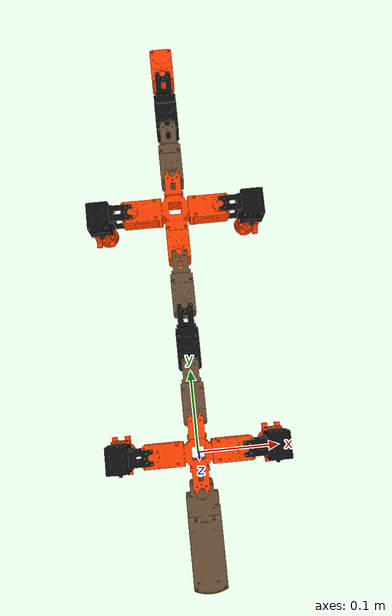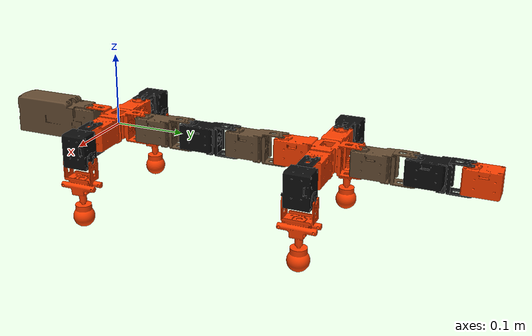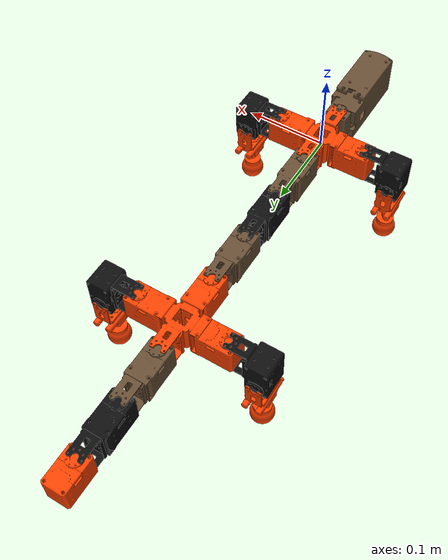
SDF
<?xml version="1.0" ?>
<sdf version="1.6">
  <world name="world">
    <model name="V2SalamanderRobot">
      <pose>0.0 0.0 0.0 0.0 0.0 0.0</pose>
      <link name="base_link">
        <pose>0.0 0.0 0.0 0.0 0.0 0.0</pose>
        <inertial>
          <pose>7.42237988189514e-13 -1.9292496043488565e-06 -0.0003800327833397048 0.0 0.0 0.0</pose>
          <mass>0.2889489844693423</mass>
          <inertia>
            <ixx>6.203340226218487e-05</ixx>
            <ixy>-1.2378155399518376e-12</ixy>
            <ixz>-3.9372639104666543e-17</ixz>
            <iyy>0.0006301575302018931</iyy>
            <iyz>2.1184586882804209e-10</iyz>
            <izz>0.0006268797658595486</izz>
          </inertia>
        </inertial>
        <collision name="base_link_collision">
          <pose>0.0 0.0 0.0 0.0 0.0 0.0</pose>
          <geometry>
            <mesh>
              <uri>meshes/base_link.stl</uri>
              <scale>0.001 0.001 0.001</scale>
            </mesh>
          </geometry>
        </collision>
        <visual name="base_link_visual">
          <pose>0.0 0.0 0.0 0.0 0.0 0.0</pose>
          <geometry>
            <mesh>
              <uri>meshes/base_link.stl</uri>
              <scale>0.001 0.001 0.001</scale>
            </mesh>
          </geometry>
          <material>
            <ambient>1.0 0.25 0 1</ambient>
            <diffuse>1.0 0.25 0 1</diffuse>
            <specular>1.0 0.25 0 1</specular>
            <emissive>1.0 0.25 0 1</emissive>
          </material>
        </visual>
      </link>
      <link name="head">
        <pose>0.0 -0.045 0.019 0.0 0.0 0.0</pose>
        <inertial>
          <pose>6.030339272706755e-11 -0.011641239820081369 -0.018575282175538076 0.0 0.0 0.0</pose>
          <mass>0.11771798534526684</mass>
          <inertia>
            <ixx>3.273506574607482e-05</ixx>
            <ixy>-9.44125662229807e-14</ixy>
            <ixz>-6.467897178162268e-13</ixz>
            <iyy>1.9286060309157253e-05</iyy>
            <iyz>-1.0525841574405383e-07</iyz>
            <izz>2.851244504239591e-05</izz>
          </inertia>
        </inertial>
        <collision name="head_collision">
          <pose>0.0 0.0 -0.019 0.0 0.0 0.0</pose>
          <geometry>
            <mesh>
              <uri>meshes/Head.stl</uri>
              <scale>0.001 0.001 0.001</scale>
            </mesh>
          </geometry>
        </collision>
        <visual name="head_visual">
          <pose>0.0 0.0 -0.019 0.0 0.0 0.0</pose>
          <geometry>
            <mesh>
              <uri>meshes/Head.stl</uri>
              <scale>0.001 0.001 0.001</scale>
            </mesh>
          </geometry>
          <material>
            <ambient>0.4 0.3 0.2 1</ambient>
            <diffuse>0.4 0.3 0.2 1</diffuse>
            <specular>0.4 0.3 0.2 1</specular>
            <emissive>0.4 0.3 0.2 1</emissive>
          </material>
        </visual>
      </link>
      <link name="link_spine_v21XM430_W350_R_v1_v21X-430_IDLE1">
        <pose>0.0 0.0449 0.019 0.0 0.0 0.0</pose>
        <inertial>
          <pose>6.329810736086822e-06 0.014970743667780007 -0.019372958157997024 0.0 0.0 0.0</pose>
          <mass>0.13127865763979402</mass>
          <inertia>
            <ixx>4.941827675605272e-05</ixx>
            <ixy>-1.420641475980395e-08</ixy>
            <ixz>1.2567682908937612e-08</ixz>
            <iyy>2.315951195546107e-05</iyy>
            <iyz>-2.8733396688711805e-07</iyz>
            <izz>4.292286280268648e-05</izz>
          </inertia>
        </inertial>
        <collision name="link_spine_v21XM430_W350_R_v1_v21X-430_IDLE1_collision">
          <pose>0.0 -0.0449 -0.019 0.0 0.0 0.0</pose>
          <geometry>
            <mesh>
              <uri>meshes/link_spine_v21XM430_W350_R_v1_v21X-430_IDLE1.stl</uri>
              <scale>0.001 0.001 0.001</scale>
            </mesh>
          </geometry>
        </collision>
        <visual name="link_spine_v21XM430_W350_R_v1_v21X-430_IDLE1_visual">
          <pose>0.0 -0.0449 -0.019 0.0 0.0 0.0</pose>
          <geometry>
            <mesh>
              <uri>meshes/link_spine_v21XM430_W350_R_v1_v21X-430_IDLE1.stl</uri>
              <scale>0.001 0.001 0.001</scale>
            </mesh>
          </geometry>
          <material>
            <ambient>0.4 0.3 0.2 1</ambient>
            <diffuse>0.4 0.3 0.2 1</diffuse>
            <specular>0.4 0.3 0.2 1</specular>
            <emissive>0.4 0.3 0.2 1</emissive>
          </material>
        </visual>
      </link>
      <link name="link_spine_v22XM430_W350_R_v1_v21X-430_IDLE1">
        <pose>0.0 0.1134 0.019 0.0 0.0 0.0</pose>
        <inertial>
          <pose>6.329808715232242e-06 0.014970741494816808 -0.019372958190713257 0.0 0.0 0.0</pose>
          <mass>0.131278657639794</mass>
          <inertia>
            <ixx>4.9418279730786617e-05</ixx>
            <ixy>-1.4206412782641869e-08</ixy>
            <ixz>1.256768261259443e-08</ixz>
            <iyy>2.315951161711794e-05</iyy>
            <iyz>-2.8733422554076287e-07</iyz>
            <izz>4.292286592102821e-05</izz>
          </inertia>
        </inertial>
        <collision name="link_spine_v22XM430_W350_R_v1_v21X-430_IDLE1_collision">
          <pose>-0.0 -0.1134 -0.019 0.0 0.0 0.0</pose>
          <geometry>
            <mesh>
              <uri>meshes/link_spine_v22XM430_W350_R_v1_v21X-430_IDLE1.stl</uri>
              <scale>0.001 0.001 0.001</scale>
            </mesh>
          </geometry>
        </collision>
        <visual name="link_spine_v22XM430_W350_R_v1_v21X-430_IDLE1_visual">
          <pose>-0.0 -0.1134 -0.019 0.0 0.0 0.0</pose>
          <geometry>
            <mesh>
              <uri>meshes/link_spine_v22XM430_W350_R_v1_v21X-430_IDLE1.stl</uri>
              <scale>0.001 0.001 0.001</scale>
            </mesh>
          </geometry>
          <material>
            <ambient>0.05 0.05 0.05 1</ambient>
            <diffuse>0.05 0.05 0.05 1</diffuse>
            <specular>0.05 0.05 0.05 1</specular>
            <emissive>0.05 0.05 0.05 1</emissive>
          </material>
        </visual>
      </link>
      <link name="link_spine_v23XM430_W350_R_v1_v21X-430_IDLE1">
        <pose>0.0 0.1819 0.019 0.0 0.0 0.0</pose>
        <inertial>
          <pose>6.329808655829628e-06 0.014970741638069801 -0.019372958204767757 0.0 0.0 0.0</pose>
          <mass>0.131278657639794</mass>
          <inertia>
            <ixx>4.941827937534177e-05</ixx>
            <ixy>-1.4206412864262256e-08</ixy>
            <ixz>1.256768651684258e-08</ixz>
            <iyy>2.3159511453580432e-05</iyy>
            <iyz>-2.8733425577601013e-07</iyz>
            <izz>4.2922865840581415e-05</izz>
          </inertia>
        </inertial>
        <collision name="link_spine_v23XM430_W350_R_v1_v21X-430_IDLE1_collision">
          <pose>-0.0 -0.1819 -0.019 0.0 0.0 0.0</pose>
          <geometry>
            <mesh>
              <uri>meshes/link_spine_v23XM430_W350_R_v1_v21X-430_IDLE1.stl</uri>
              <scale>0.001 0.001 0.001</scale>
            </mesh>
          </geometry>
        </collision>
        <visual name="link_spine_v23XM430_W350_R_v1_v21X-430_IDLE1_visual">
          <pose>-0.0 -0.1819 -0.019 0.0 0.0 0.0</pose>
          <geometry>
            <mesh>
              <uri>meshes/link_spine_v23XM430_W350_R_v1_v21X-430_IDLE1.stl</uri>
              <scale>0.001 0.001 0.001</scale>
            </mesh>
          </geometry>
          <material>
            <ambient>0.4 0.3 0.2 1</ambient>
            <diffuse>0.4 0.3 0.2 1</diffuse>
            <specular>0.4 0.3 0.2 1</specular>
            <emissive>0.4 0.3 0.2 1</emissive>
          </material>
        </visual>
      </link>
      <link name="link_girdle_salamander_2_v31link_girdle_v71girdle_v31girdle1">
        <pose>0.0 0.2504 -0.019 0.0 0.0 0.0</pose>
        <inertial>
          <pose>2.1961327884012073e-06 0.043468986079035155 0.0186071388396934 0.0 0.0 0.0</pose>
          <mass>0.40432586676064347</mass>
          <inertia>
            <ixx>0.0002758727594262536</ixx>
            <ixy>1.0123815457037044e-08</ixy>
            <ixz>1.3418380449153109e-08</ixz>
            <iyy>0.0006320316115391221</iyy>
            <iyz>-2.961554680523555e-07</iyz>
            <izz>0.0008213387360462268</izz>
          </inertia>
        </inertial>
        <collision name="link_girdle_salamander_2_v31link_girdle_v71girdle_v31girdle1_collision">
          <pose>-0.0 -0.2504 0.019 0.0 0.0 0.0</pose>
          <geometry>
            <mesh>
              <uri>meshes/link_girdle_salamander_2_v31link_girdle_v71girdle_v31girdle1.stl</uri>
              <scale>0.001 0.001 0.001</scale>
            </mesh>
          </geometry>
        </collision>
        <visual name="link_girdle_salamander_2_v31link_girdle_v71girdle_v31girdle1_visual">
          <pose>-0.0 -0.2504 0.019 0.0 0.0 0.0</pose>
          <geometry>
            <mesh>
              <uri>meshes/link_girdle_salamander_2_v31link_girdle_v71girdle_v31girdle1.stl</uri>
              <scale>0.001 0.001 0.001</scale>
            </mesh>
          </geometry>
          <material>
            <ambient>1.0 0.25 0 1</ambient>
            <diffuse>1.0 0.25 0 1</diffuse>
            <specular>1.0 0.25 0 1</specular>
            <emissive>1.0 0.25 0 1</emissive>
          </material>
        </visual>
      </link>
      <link name="link_tail_v21XM430_W210_R_v1_v31X-430_IDLE1">
        <pose>0.0 0.3529 0.019 0.0 0.0 0.0</pose>
        <inertial>
          <pose>1.4051831691695117e-09 0.015016270061978254 -0.01938166855263028 0.0 0.0 0.0</pose>
          <mass>0.13131071893348267</mass>
          <inertia>
            <ixx>4.944150289937662e-05</ixx>
            <ixy>-2.8252140868085127e-12</ixy>
            <ixz>-1.9830361017324945e-11</ixz>
            <iyy>2.317851323004965e-05</iyy>
            <iyz>-2.6769880678544233e-07</iyz>
            <izz>4.2940168103863436e-05</izz>
          </inertia>
        </inertial>
        <collision name="link_tail_v21XM430_W210_R_v1_v31X-430_IDLE1_collision">
          <pose>-0.0 -0.3528 -0.019 0.0 0.0 0.0</pose>
          <geometry>
            <mesh>
              <uri>meshes/link_tail_v21XM430_W210_R_v1_v31X-430_IDLE1.stl</uri>
              <scale>0.001 0.001 0.001</scale>
            </mesh>
          </geometry>
        </collision>
        <visual name="link_tail_v21XM430_W210_R_v1_v31X-430_IDLE1_visual">
          <pose>-0.0 -0.3528 -0.019 0.0 0.0 0.0</pose>
          <geometry>
            <mesh>
              <uri>meshes/link_tail_v21XM430_W210_R_v1_v31X-430_IDLE1.stl</uri>
              <scale>0.001 0.001 0.001</scale>
            </mesh>
          </geometry>
          <material>
            <ambient>0.4 0.3 0.2 1</ambient>
            <diffuse>0.4 0.3 0.2 1</diffuse>
            <specular>0.4 0.3 0.2 1</specular>
            <emissive>0.4 0.3 0.2 1</emissive>
          </material>
        </visual>
      </link>
      <link name="link_tail_v22XM430_W210_R_v1_v31X-430_IDLE1">
        <pose>0.0 0.4214 0.019 0.0 0.0 0.0</pose>
        <inertial>
          <pose>1.405183168921037e-09 0.014946270061978462 -0.019381668552630283 0.0 0.0 0.0</pose>
          <mass>0.13131071893348265</mass>
          <inertia>
            <ixx>4.9441502899338326e-05</ixx>
            <ixy>-2.8252141114009688e-12</ixy>
            <ixz>-1.9830361017229335e-11</ixz>
            <iyy>2.317851323004964e-05</iyy>
            <iyz>-2.676988067857116e-07</iyz>
            <izz>4.294016810382499e-05</izz>
          </inertia>
        </inertial>
        <collision name="link_tail_v22XM430_W210_R_v1_v31X-430_IDLE1_collision">
          <pose>-0.0 -0.42137 -0.019 0.0 0.0 0.0</pose>
          <geometry>
            <mesh>
              <uri>meshes/link_tail_v22XM430_W210_R_v1_v31X-430_IDLE1.stl</uri>
              <scale>0.001 0.001 0.001</scale>
            </mesh>
          </geometry>
        </collision>
        <visual name="link_tail_v22XM430_W210_R_v1_v31X-430_IDLE1_visual">
          <pose>-0.0 -0.42137 -0.019 0.0 0.0 0.0</pose>
          <geometry>
            <mesh>
              <uri>meshes/link_tail_v22XM430_W210_R_v1_v31X-430_IDLE1.stl</uri>
              <scale>0.001 0.001 0.001</scale>
            </mesh>
          </geometry>
          <material>
            <ambient>0.05 0.05 0.05 1</ambient>
            <diffuse>0.05 0.05 0.05 1</diffuse>
            <specular>0.05 0.05 0.05 1</specular>
            <emissive>0.05 0.05 0.05 1</emissive>
          </material>
        </visual>
      </link>
      <link name="XM430_W210_R_v1_v31X-430_IDLE1">
        <pose>0.0 0.4899 0.019 0.0 0.0 0.0</pose>
        <inertial>
          <pose>1.0090401883316374e-10 0.011713010650924227 -0.019424324836757923 0.0 0.0 0.0</pose>
          <mass>0.11775004663895541</mass>
          <inertia>
            <ixx>3.2748774838012185e-05</ixx>
            <ixy>9.087157419056469e-14</ixy>
            <ixz>-1.9747781991859698e-11</ixz>
            <iyy>1.929262842209805e-05</iyy>
            <iyz>-1.0485067163090217e-07</iyz>
            <izz>2.852676102921425e-05</izz>
          </inertia>
        </inertial>
        <collision name="XM430_W210_R_v1_v31X-430_IDLE1_collision">
          <pose>-0.0 -0.4898 -0.019 0.0 0.0 0.0</pose>
          <geometry>
            <mesh>
              <uri>meshes/XM430_W210_R_v1_v31X-430_IDLE1.stl</uri>
              <scale>0.001 0.001 0.001</scale>
            </mesh>
          </geometry>
        </collision>
        <visual name="XM430_W210_R_v1_v31X-430_IDLE1_visual">
          <pose>-0.0 -0.4898 -0.019 0.0 0.0 0.0</pose>
          <geometry>
            <mesh>
              <uri>meshes/XM430_W210_R_v1_v31X-430_IDLE1.stl</uri>
              <scale>0.001 0.001 0.001</scale>
            </mesh>
          </geometry>
          <material>
            <ambient>1.0 0.25 0 1</ambient>
            <diffuse>1.0 0.25 0 1</diffuse>
            <specular>1.0 0.25 0 1</specular>
            <emissive>1.0 0.25 0 1</emissive>
          </material>
        </visual>
      </link>
      <link name="link_left_leg_v21XM430_W350_R_v1_v21X-430_IDLE1">
        <pose>0.0575 0.0 0.0 0.0 0.0 0.0</pose>
        <inertial>
          <pose>0.04083258144150035 -0.00038862876124461294 -0.004127287601795738 0.0 0.0 0.0</pose>
          <mass>0.12566887301933358</mass>
          <inertia>
            <ixx>3.531301373779605e-05</ixx>
            <ixy>5.4780983151499165e-08</ixy>
            <ixz>7.317876472158008e-07</ixz>
            <iyy>3.485211799021769e-05</iyy>
            <iyz>-1.416968074879363e-07</iyz>
            <izz>2.389311581486568e-05</izz>
          </inertia>
        </inertial>
        <collision name="link_left_leg_v21XM430_W350_R_v1_v21X-430_IDLE1_collision">
          <pose>-0.0575 0.0 0.0 0.0 0.0 0.0</pose>
          <geometry>
            <mesh>
              <uri>meshes/link_left_leg_v21XM430_W350_R_v1_v21X-430_IDLE1.stl</uri>
              <scale>0.001 0.001 0.001</scale>
            </mesh>
          </geometry>
        </collision>
        <visual name="link_left_leg_v21XM430_W350_R_v1_v21X-430_IDLE1_visual">
          <pose>-0.0575 0.0 0.0 0.0 0.0 0.0</pose>
          <geometry>
            <mesh>
              <uri>meshes/link_left_leg_v21XM430_W350_R_v1_v21X-430_IDLE1.stl</uri>
              <scale>0.001 0.001 0.001</scale>
            </mesh>
          </geometry>
          <material>
            <ambient>0.05 0.05 0.05 1</ambient>
            <diffuse>0.05 0.05 0.05 1</diffuse>
            <specular>0.05 0.05 0.05 1</specular>
            <emissive>0.05 0.05 0.05 1</emissive>
          </material>
        </visual>
      </link>
      <link name="link_left_leg_v22XM430_W350_R_v1_v21X-430_IDLE1">
        <pose>0.0575 0.3079 0.0 0.0 0.0 0.0</pose>
        <inertial>
          <pose>0.04083258130497049 -0.00038292873510287206 -0.004127287484305108 0.0 0.0 0.0</pose>
          <mass>0.12566887301933358</mass>
          <inertia>
            <ixx>3.531301409320499e-05</ixx>
            <ixy>5.47808488687334e-08</ixy>
            <ixz>7.317876343607348e-07</ixz>
            <iyy>3.485211951821188e-05</iyy>
            <iyz>-1.416971945491358e-07</iyz>
            <izz>2.3893117254563697e-05</izz>
          </inertia>
        </inertial>
        <collision name="link_left_leg_v22XM430_W350_R_v1_v21X-430_IDLE1_collision">
          <pose>-0.0575 -0.30793 -0.0 0.0 0.0 0.0</pose>
          <geometry>
            <mesh>
              <uri>meshes/link_left_leg_v22XM430_W350_R_v1_v21X-430_IDLE1.stl</uri>
              <scale>0.001 0.001 0.001</scale>
            </mesh>
          </geometry>
        </collision>
        <visual name="link_left_leg_v22XM430_W350_R_v1_v21X-430_IDLE1_visual">
          <pose>-0.0575 -0.30793 -0.0 0.0 0.0 0.0</pose>
          <geometry>
            <mesh>
              <uri>meshes/link_left_leg_v22XM430_W350_R_v1_v21X-430_IDLE1.stl</uri>
              <scale>0.001 0.001 0.001</scale>
            </mesh>
          </geometry>
          <material>
            <ambient>0.05 0.05 0.05 1</ambient>
            <diffuse>0.05 0.05 0.05 1</diffuse>
            <specular>0.05 0.05 0.05 1</specular>
            <emissive>0.05 0.05 0.05 1</emissive>
          </material>
        </visual>
      </link>
      <link name="link_right_leg_v21XM430_W350_R_v1_v21X-430_IDLE1">
        <pose>-0.0575 0.0 0.0 0.0 0.0 0.0</pose>
        <inertial>
          <pose>-0.04084579916830575 -0.0003886288424511308 -0.004127288246744913 0.0 0.0 0.0</pose>
          <mass>0.12566887301933355</mass>
          <inertia>
            <ixx>3.531301308798099e-05</ixx>
            <ixy>-7.988248779976503e-08</ixy>
            <ixz>-6.983554788836124e-07</ixz>
            <iyy>3.4856697406034465e-05</iyy>
            <iyz>-1.41696812833226e-07</iyz>
            <izz>2.3897695872544993e-05</izz>
          </inertia>
        </inertial>
        <collision name="link_right_leg_v21XM430_W350_R_v1_v21X-430_IDLE1_collision">
          <pose>0.0575 0.0 0.0 0.0 0.0 0.0</pose>
          <geometry>
            <mesh>
              <uri>meshes/link_right_leg_v21XM430_W350_R_v1_v21X-430_IDLE1.stl</uri>
              <scale>0.001 0.001 0.001</scale>
            </mesh>
          </geometry>
        </collision>
        <visual name="link_right_leg_v21XM430_W350_R_v1_v21X-430_IDLE1_visual">
          <pose>0.0575 0.0 0.0 0.0 0.0 0.0</pose>
          <geometry>
            <mesh>
              <uri>meshes/link_right_leg_v21XM430_W350_R_v1_v21X-430_IDLE1.stl</uri>
              <scale>0.001 0.001 0.001</scale>
            </mesh>
          </geometry>
          <material>
            <ambient>0.05 0.05 0.05 1</ambient>
            <diffuse>0.05 0.05 0.05 1</diffuse>
            <specular>0.05 0.05 0.05 1</specular>
            <emissive>0.05 0.05 0.05 1</emissive>
          </material>
        </visual>
      </link>
      <link name="link_right_leg_v22XM430_W350_R_v1_v21X-430_IDLE1">
        <pose>-0.0575 0.3079 0.0 0.0 0.0 0.0</pose>
        <inertial>
          <pose>-0.040845798977223007 -0.000382928816119954 -0.004127288123847577 0.0 0.0 0.0</pose>
          <mass>0.1256688730193336</mass>
          <inertia>
            <ixx>3.531301344878891e-05</ixx>
            <ixy>-7.988226130610476e-08</ixy>
            <ixz>-6.983556199730055e-07</ixz>
            <iyy>3.4856698921092415e-05</iyy>
            <iyz>-1.416972070853832e-07</iyz>
            <izz>2.389769729416161e-05</izz>
          </inertia>
        </inertial>
        <collision name="link_right_leg_v22XM430_W350_R_v1_v21X-430_IDLE1_collision">
          <pose>0.0575 -0.30793 0.0 0.0 0.0 0.0</pose>
          <geometry>
            <mesh>
              <uri>meshes/link_right_leg_v22XM430_W350_R_v1_v21X-430_IDLE1.stl</uri>
              <scale>0.001 0.001 0.001</scale>
            </mesh>
          </geometry>
        </collision>
        <visual name="link_right_leg_v22XM430_W350_R_v1_v21X-430_IDLE1_visual">
          <pose>0.0575 -0.30793 0.0 0.0 0.0 0.0</pose>
          <geometry>
            <mesh>
              <uri>meshes/link_right_leg_v22XM430_W350_R_v1_v21X-430_IDLE1.stl</uri>
              <scale>0.001 0.001 0.001</scale>
            </mesh>
          </geometry>
          <material>
            <ambient>0.05 0.05 0.05 1</ambient>
            <diffuse>0.05 0.05 0.05 1</diffuse>
            <specular>0.05 0.05 0.05 1</specular>
            <emissive>0.05 0.05 0.05 1</emissive>
          </material>
        </visual>
      </link>
      <link name="link_foot_v21fr12_h1011">
        <pose>0.0985 0.0 -0.01603 0.0 0.0 0.0</pose>
        <inertial>
          <pose>0.001000042025224985 -3.995913721516367e-08 -0.059033887903779524 0.0 0.0 0.0</pose>
          <mass>0.0474422550728817</mass>
          <inertia>
            <ixx>3.181301419353018e-05</ixx>
            <ixy>-2.2700767944325564e-12</ixy>
            <ixz>-1.5726357006359807e-12</ixz>
            <iyy>2.980723673584514e-05</iyy>
            <iyz>-9.61983665720713e-13</iyz>
            <izz>6.253466452350729e-06</izz>
          </inertia>
        </inertial>
        <collision name="link_foot_v21fr12_h1011_collision">
          <pose>0.0010000000000000009 0.0 -0.044 0.0 0.0 0.0</pose>
          <geometry>
            <mesh>
              <uri>meshes/foot.stl</uri>
              <scale>0.001 0.001 0.001</scale>
            </mesh>
          </geometry>
        </collision>
        <visual name="link_foot_v21fr12_h1011_visual">
          <pose>0.0010000000000000009 0.0 -0.044 0.0 0.0 0.0</pose>
          <geometry>
            <mesh>
              <uri>meshes/foot.stl</uri>
              <scale>0.001 0.001 0.001</scale>
            </mesh>
          </geometry>
          <material>
            <ambient>1.0 0.25 0 1</ambient>
            <diffuse>1.0 0.25 0 1</diffuse>
            <specular>1.0 0.25 0 1</specular>
            <emissive>1.0 0.25 0 1</emissive>
          </material>
        </visual>
      </link>
      <link name="link_foot_v22fr12_h1011">
        <pose>-0.0985 0.0 -0.01603 0.0 0.0 0.0</pose>
        <inertial>
          <pose>-0.0009999579747750169 -3.995913721516367e-08 -0.059033887903779524 0.0 0.0 0.0</pose>
          <mass>0.0474422550728817</mass>
          <inertia>
            <ixx>3.181301419353018e-05</ixx>
            <ixy>-2.2700767944325564e-12</ixy>
            <ixz>-1.5726357006359807e-12</ixz>
            <iyy>2.980723673584514e-05</iyy>
            <iyz>-9.61983665720713e-13</iyz>
            <izz>6.253466452350729e-06</izz>
          </inertia>
        </inertial>
        <collision name="link_foot_v22fr12_h1011_collision">
          <pose>-0.0010000000000000009 0.0 -0.044 0.0 0.0 0.0</pose>
          <geometry>
            <mesh>
              <uri>meshes/foot.stl</uri>
              <scale>0.001 0.001 0.001</scale>
            </mesh>
          </geometry>
        </collision>
        <visual name="link_foot_v22fr12_h1011_visual">
          <pose>-0.0010000000000000009 0.0 -0.044 0.0 0.0 0.0</pose>
          <geometry>
            <mesh>
              <uri>meshes/foot.stl</uri>
              <scale>0.001 0.001 0.001</scale>
            </mesh>
          </geometry>
          <material>
            <ambient>1.0 0.25 0 1</ambient>
            <diffuse>1.0 0.25 0 1</diffuse>
            <specular>1.0 0.25 0 1</specular>
            <emissive>1.0 0.25 0 1</emissive>
          </material>
        </visual>
      </link>
      <link name="link_foot_v23fr12_h1011">
        <pose>0.0985 0.3079 -0.01603 0.0 0.0 0.0</pose>
        <inertial>
          <pose>0.00028224202522499417 -3.995913721516367e-08 -0.059033887903779524 0.0 0.0 0.0</pose>
          <mass>0.0474422550728817</mass>
          <inertia>
            <ixx>3.181301419353018e-05</ixx>
            <ixy>-2.2700767944325564e-12</ixy>
            <ixz>-1.5726357006359807e-12</ixz>
            <iyy>2.980723673584514e-05</iyy>
            <iyz>-9.61983665720713e-13</iyz>
            <izz>6.253466452350729e-06</izz>
          </inertia>
        </inertial>
        <collision name="link_foot_v23fr12_h1011_collision">
          <pose>0.0002822000000000102 0.0 -0.044 0.0 0.0 0.0</pose>
          <geometry>
            <mesh>
              <uri>meshes/foot.stl</uri>
              <scale>0.001 0.001 0.001</scale>
            </mesh>
          </geometry>
        </collision>
        <visual name="link_foot_v23fr12_h1011_visual">
          <pose>0.0002822000000000102 0.0 -0.044 0.0 0.0 0.0</pose>
          <geometry>
            <mesh>
              <uri>meshes/foot.stl</uri>
              <scale>0.001 0.001 0.001</scale>
            </mesh>
          </geometry>
          <material>
            <ambient>1.0 0.25 0 1</ambient>
            <diffuse>1.0 0.25 0 1</diffuse>
            <specular>1.0 0.25 0 1</specular>
            <emissive>1.0 0.25 0 1</emissive>
          </material>
        </visual>
      </link>
      <link name="link_foot_v24fr12_h1011">
        <pose>-0.0985 0.3079 -0.01603 0.0 0.0 0.0</pose>
        <inertial>
          <pose>-0.00028215797477502627 -3.995913721516367e-08 -0.059033887903779524 0.0 0.0 0.0</pose>
          <mass>0.0474422550728817</mass>
          <inertia>
            <ixx>3.181301419353018e-05</ixx>
            <ixy>-2.2700767944325564e-12</ixy>
            <ixz>-1.5726357006359807e-12</ixz>
            <iyy>2.980723673584514e-05</iyy>
            <iyz>-9.61983665720713e-13</iyz>
            <izz>6.253466452350729e-06</izz>
          </inertia>
        </inertial>
        <collision name="link_foot_v24fr12_h1011_collision">
          <pose>-0.0002822000000000102 0.0 -0.044 0.0 0.0 0.0</pose>
          <geometry>
            <mesh>
              <uri>meshes/foot.stl</uri>
              <scale>0.001 0.001 0.001</scale>
            </mesh>
          </geometry>
        </collision>
        <visual name="link_foot_v24fr12_h1011_visual">
          <pose>-0.0002822000000000102 0.0 -0.044 0.0 0.0 0.0</pose>
          <geometry>
            <mesh>
              <uri>meshes/foot.stl</uri>
              <scale>0.001 0.001 0.001</scale>
            </mesh>
          </geometry>
          <material>
            <ambient>1.0 0.25 0 1</ambient>
            <diffuse>1.0 0.25 0 1</diffuse>
            <specular>1.0 0.25 0 1</specular>
            <emissive>1.0 0.25 0 1</emissive>
          </material>
        </visual>
      </link>
      <joint name="Joint1" type="continuous">
        <parent>base_link</parent>
        <child>head</child>
        <pose>0 0 0 0 0 0</pose>
        <axis>
          <xyz>-0.0 0.0 1.0</xyz>
        </axis>
      </joint>
      <joint name="Joint2" type="continuous">
        <parent>base_link</parent>
        <child>link_spine_v21XM430_W350_R_v1_v21X-430_IDLE1</child>
        <pose>0 0 0 0 0 0</pose>
        <axis>
          <xyz>-0.0 -0.0 1.0</xyz>
        </axis>
      </joint>
      <joint name="Joint3" type="continuous">
        <parent>link_spine_v21XM430_W350_R_v1_v21X-430_IDLE1</parent>
        <child>link_spine_v22XM430_W350_R_v1_v21X-430_IDLE1</child>
        <pose>0 0 0 0 0 0</pose>
        <axis>
          <xyz>0.0 0.0 -1.0</xyz>
        </axis>
      </joint>
      <joint name="Joint4" type="continuous">
        <parent>link_spine_v22XM430_W350_R_v1_v21X-430_IDLE1</parent>
        <child>link_spine_v23XM430_W350_R_v1_v21X-430_IDLE1</child>
        <pose>0 0 0 0 0 0</pose>
        <axis>
          <xyz>0.0 0.0 -1.0</xyz>
        </axis>
      </joint>
      <joint name="Joint5" type="continuous">
        <parent>link_spine_v23XM430_W350_R_v1_v21X-430_IDLE1</parent>
        <child>link_girdle_salamander_2_v31link_girdle_v71girdle_v31girdle1</child>
        <pose>0 0 0 0 0 0</pose>
        <axis>
          <xyz>0.0 0.0 -1.0</xyz>
        </axis>
      </joint>
      <joint name="Joint6" type="continuous">
        <parent>link_girdle_salamander_2_v31link_girdle_v71girdle_v31girdle1</parent>
        <child>link_tail_v21XM430_W210_R_v1_v31X-430_IDLE1</child>
        <pose>0 0 0 0 0 0</pose>
        <axis>
          <xyz>-0.0 -0.0 1.0</xyz>
        </axis>
      </joint>
      <joint name="Joint7" type="continuous">
        <parent>link_tail_v21XM430_W210_R_v1_v31X-430_IDLE1</parent>
        <child>link_tail_v22XM430_W210_R_v1_v31X-430_IDLE1</child>
        <pose>0 0 0 0 0 0</pose>
        <axis>
          <xyz>0.0 0.0 -1.0</xyz>
        </axis>
      </joint>
      <joint name="Joint8" type="continuous">
        <parent>link_tail_v22XM430_W210_R_v1_v31X-430_IDLE1</parent>
        <child>XM430_W210_R_v1_v31X-430_IDLE1</child>
        <pose>0 0 0 0 0 0</pose>
        <axis>
          <xyz>0.0 0.0 -1.0</xyz>
        </axis>
      </joint>
      <joint name="Joint11" type="continuous">
        <parent>base_link</parent>
        <child>link_left_leg_v21XM430_W350_R_v1_v21X-430_IDLE1</child>
        <pose>0 0 0 0 0 0</pose>
        <axis>
          <xyz>-0.0 0.0 -1.0</xyz>
        </axis>
      </joint>
      <joint name="Joint31" type="continuous">
        <parent>link_girdle_salamander_2_v31link_girdle_v71girdle_v31girdle1</parent>
        <child>link_left_leg_v22XM430_W350_R_v1_v21X-430_IDLE1</child>
        <pose>0 0 0 0 0 0</pose>
        <axis>
          <xyz>-0.0 0.0 -1.0</xyz>
        </axis>
      </joint>
      <joint name="Joint21" type="continuous">
        <parent>base_link</parent>
        <child>link_right_leg_v21XM430_W350_R_v1_v21X-430_IDLE1</child>
        <pose>0 0 0 0 0 0</pose>
        <axis>
          <xyz>0.0 -0.0 -1.0</xyz>
        </axis>
      </joint>
      <joint name="Joint41" type="continuous">
        <parent>link_girdle_salamander_2_v31link_girdle_v71girdle_v31girdle1</parent>
        <child>link_right_leg_v22XM430_W350_R_v1_v21X-430_IDLE1</child>
        <pose>0 0 0 0 0 0</pose>
        <axis>
          <xyz>0.0 -0.0 -1.0</xyz>
        </axis>
      </joint>
      <joint name="Joint12" type="continuous">
        <parent>link_left_leg_v21XM430_W350_R_v1_v21X-430_IDLE1</parent>
        <child>link_foot_v21fr12_h1011</child>
        <pose>0 0 0 0 0 0</pose>
        <axis>
          <xyz>0.0 -1.0 -0.0</xyz>
        </axis>
      </joint>
      <joint name="Joint22" type="continuous">
        <parent>link_right_leg_v21XM430_W350_R_v1_v21X-430_IDLE1</parent>
        <child>link_foot_v22fr12_h1011</child>
        <pose>0 0 0 0 0 0</pose>
        <axis>
          <xyz>0.0 -1.0 0.0</xyz>
        </axis>
      </joint>
      <joint name="Joint32" type="continuous">
        <parent>link_left_leg_v22XM430_W350_R_v1_v21X-430_IDLE1</parent>
        <child>link_foot_v23fr12_h1011</child>
        <pose>0 0 0 0 0 0</pose>
        <axis>
          <xyz>0.0 -1.0 -0.0</xyz>
        </axis>
      </joint>
      <joint name="Joint42" type="continuous">
        <parent>link_right_leg_v22XM430_W350_R_v1_v21X-430_IDLE1</parent>
        <child>link_foot_v24fr12_h1011</child>
        <pose>0 0 0 0 0 0</pose>
        <axis>
          <xyz>0.0 -1.0 0.0</xyz>
        </axis>
      </joint>
    </model>
  </world>
</sdf>
